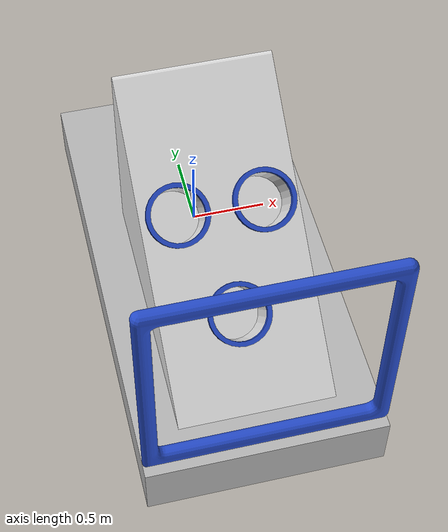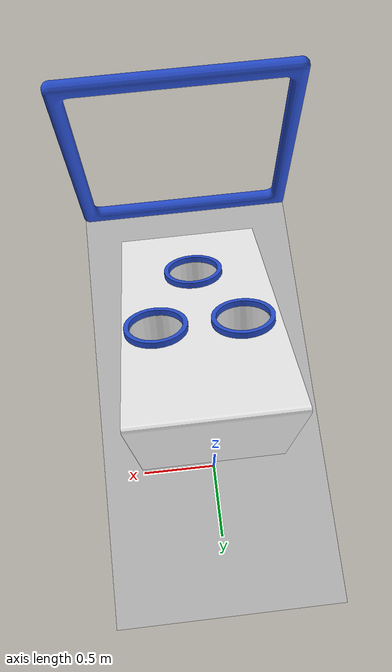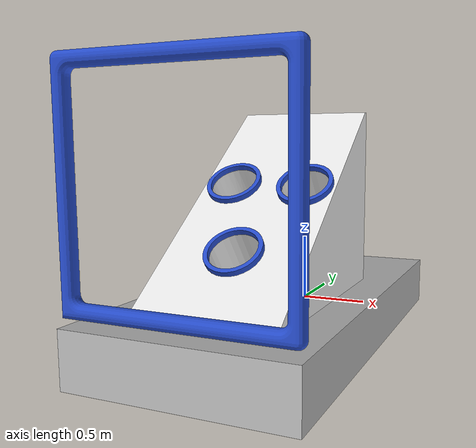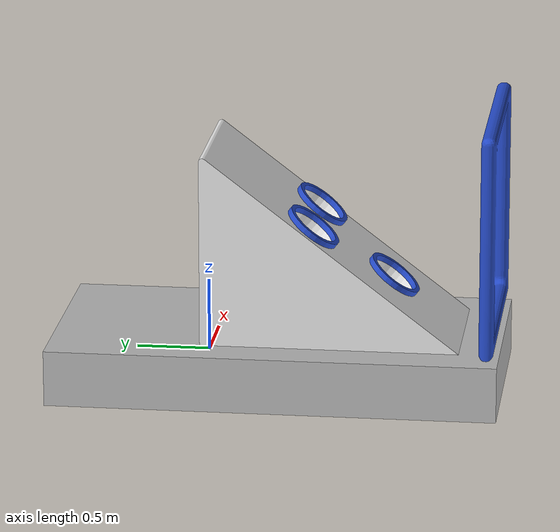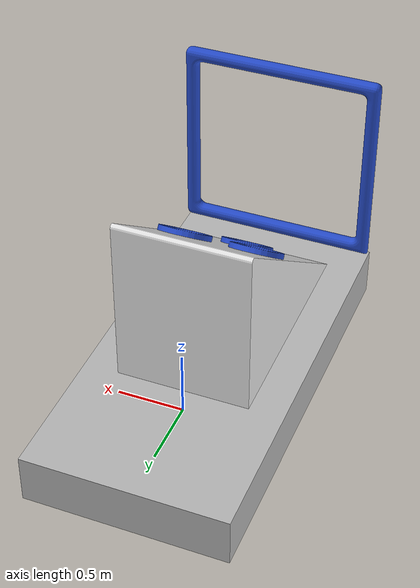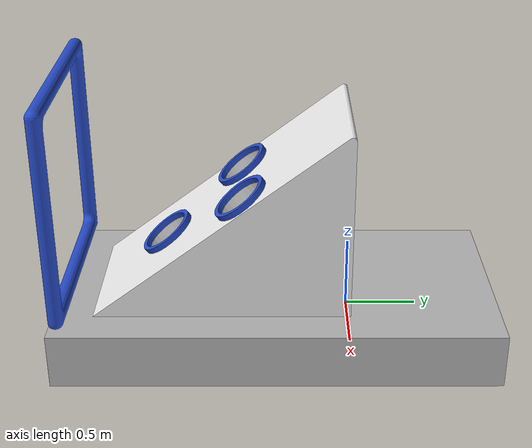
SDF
<?xml version="1.0"?>
<sdf version="1.6">
  <model name="Frame">
    <static>true</static>
    <pose>0 0 0 1.57 0 0</pose>

    <link name="Base">
    <pose>0 0 0 0 0 0</pose>
      <collision name="body_collision">
        <geometry>
          <box>
            <size>1 1 1</size>
          </box>
        </geometry>
      </collision>
      <visual name="base">
        <pose>0 0 0.5 0 0 0</pose>
        <geometry>
          <mesh>
            <uri>model://task6_model/meshes/Czesc1_do_wiaderek.stl</uri>
            <scale>0.001 0.001 0.001</scale>
          </mesh>
        </geometry>
        <material>
          <script>
              <uri>model://task6_model/materials/scripts</uri>
              <uri>model://task6_model/materials/textures</uri>
              <name>DockBase/Image</name>
          </script>
        </material>
      </visual>
    </link>

    <link name="Frame">
    <pose>0 1 1.5 0 0 0</pose>
      <collision name="body_collision">
        <geometry>
          <box>
            <size>1 1 1</size>
          </box>
        </geometry>
      </collision>
      <visual name="frame">
        <pose>0 0 0.5 0 0 0</pose>
        <geometry>
          <mesh>
            <uri>model://task6_model/meshes/Czesc2_do_wiaderek.stl</uri>
            <scale>0.001 0.001 0.001</scale>
          </mesh>
        </geometry>
        <material>
          <script>
            <uri>file://media/materials/scripts/gazebo.material</uri>
            <name>Gazebo/Blue</name>
          </script>
        </material>
      </visual>
    </link>

    <link name="Main Box">
    <pose>0 0 0 0 -1.57 0</pose>
      <collision name="body_collision">
        <geometry>
          <box>
            <size>1 1 1</size>
          </box>
        </geometry>
      </collision>
      <visual name="main_box">
        <pose>0 0 0.5 0 0 0</pose>
        <geometry>
          <mesh>
            <uri>model://task6_model/meshes/Czesc3_wiaderka.stl</uri>
            <scale>0.0001 0.0001 0.0001</scale>
          </mesh>
        </geometry>
        <material>
          <script>
            <uri>file://media/materials/scripts/gazebo.material</uri>
            <name>Gazebo/White</name>
          </script>
        </material>
      </visual>
    </link>

    <link name="Buckets">
    <pose>0 0 0 0 -1.57 0</pose>
      <collision name="body_collision">
        <geometry>
          <box>
            <size>1 1 1</size>
          </box>
        </geometry>
      </collision>
      <visual name="buckets">
        <pose>0 0 0.5 0 0 0</pose>
        <geometry>
          <mesh>
            <uri>model://task6_model/meshes/Czesc4_wiaderkav1.stl</uri>
            <scale>0.00001 0.00001 0.00001</scale>
          </mesh>
        </geometry>
        <material>
          <script>
            <uri>file://media/materials/scripts/gazebo.material</uri>
            <name>Gazebo/Blue</name>
          </script>
        </material>
      </visual>
    </link>
  </model>
</sdf>
